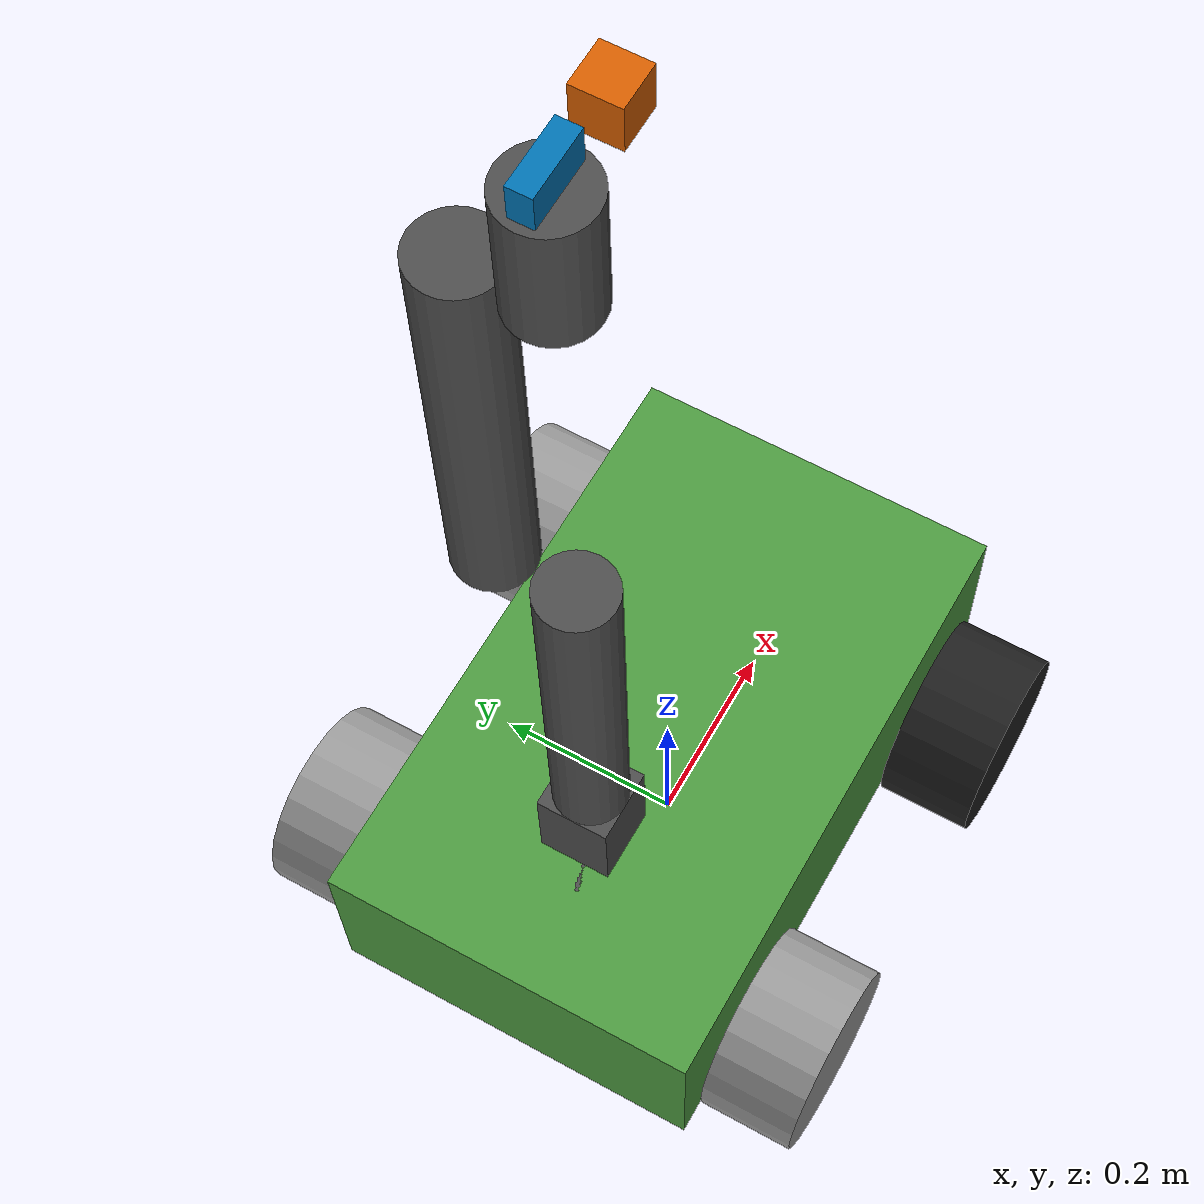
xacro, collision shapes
<?xml version="1.0" ?>
<robot name="mobile_manipulator_robot" xmlns:xacro="http://ros.org/wiki/xacro">
    <xacro:include filename="$(find custom_robot_sim)/urdf/common_macros.xacro" />

    <!-- Arm-parametere -->
    <xacro:property name="L1" value="0.4"/>   <!-- skulder → albue (tidl. 0.385) -->
    <xacro:property name="L2" value="0.4"/>   <!-- albue → håndledd (tidl. 0.270) -->
    <xacro:property name="L3" value="0.115"/>   <!-- håndledd-lenke (tidl. 0.115) -->
    <xacro:property name="R"  value="0.0375"/>  <!-- cylinder-radius = 0.075/2 -->

  <!-- Gazebo ros2_control plugin (+ peker til YAML) -->
  <gazebo>
    <plugin name="gazebo_ros2_control" filename="libgazebo_ros2_control.so">
      <parameters>$(find custom_robot_sim)/config/controller_config.yaml</parameters>
    </plugin>
  </gazebo>

  <!-- ros2_control grensesnitt -->
  <ros2_control name="GazeboSystem" type="system">
    <hardware>
      <plugin>gazebo_ros2_control/GazeboSystem</plugin>
    </hardware>

    <!-- Bakhjul: styring (posisjon) -->
    <joint name="back_left_steer_joint">
      <command_interface name="position"/>
      <state_interface name="position"/>
      <state_interface name="velocity"/>
    </joint>

    <joint name="back_right_steer_joint">
      <command_interface name="position"/>
      <state_interface name="position"/>
      <state_interface name="velocity"/>
    </joint>

    <!-- Forhjul: drift (hastighet) -->
    <joint name="front_left_wheel_joint">
      <command_interface name="velocity"/>
      <state_interface name="position"/>
      <state_interface name="velocity"/>
    </joint>

    <joint name="front_right_wheel_joint">
      <command_interface name="velocity"/>
      <state_interface name="position"/>
      <state_interface name="velocity"/>
    </joint>

    <!-- ARM joints: position-kommando -->
    <joint name="link_1_joint">
        <command_interface name="position"/>
        <state_interface name="position"/>
        <state_interface name="velocity"/>
    </joint>

    <joint name="link_2_joint">
        <command_interface name="position"/>
        <state_interface name="position"/>
        <state_interface name="velocity"/>
    </joint>

    <joint name="link_3_joint">
        <command_interface name="position"/>
        <state_interface name="position"/>
        <state_interface name="velocity"/>
    </joint>

    <joint name="ee_slider_joint">
        <command_interface name="position"/>
        <state_interface name="position"/>
        <state_interface name="velocity"/>
    </joint>
  </ros2_control>

    <xacro:property name="density_pla" value="600" />

    <!-- MOBILE PLATFORM -->

    <link name="base_footprint"/>

    <joint name="base_joint" type="fixed">
        <parent link="base_footprint"/>
        <child link="mobile_base_link" />
        <origin xyz="0 0 0.15" rpy="0 0 0"/>
    </joint>

    <!-- MOBILE BASE -->

    <link name="mobile_base_link">
        <visual>
            <origin xyz="0 0 0" rpy="0 0 0"/>
            <geometry>
                <mesh filename="$(find custom_robot_sim)/meshes/base_mesh.stl" />
            </geometry>
        </visual>
        <collision>
            <origin xyz="0 0 0" rpy="0 0 0"/>
            <geometry>
                <box size="0.650 0.400 0.200"/>
            </geometry>
        </collision>
        <xacro:inertial_box length="0.650" width="0.400" height="0.200" density="${density_pla}">
            <origin xyz="0 0 0" rpy="0 0 0"/>
        </xacro:inertial_box>
    </link>

<gazebo reference="mobile_base_link">
  <material>Gazebo/Grass</material>
</gazebo>

<!-- FRONT LEFT WHEEL (drift) -->
<joint type="continuous" name="front_left_wheel_joint">
  <origin xyz="0.200 0.255 -0.050" rpy="0 0 0"/>
  <parent link="mobile_base_link"/>
  <child link="front_left_wheel_link"/>
  <axis xyz="0 1 0"/>
  <limit effort="1000" velocity="1000"/>
  <dynamics damping="0.7" friction="1.0"/>
</joint>

<link name="front_left_wheel_link">
  <visual>
    <!-- Roter visual som collision (90° rundt X) -->
    <origin xyz="0 0 0" rpy="1.57079632679 0 0"/>
    <geometry><mesh filename="$(find custom_robot_sim)/meshes/wheel_mesh.stl"/></geometry>
  </visual>
  <collision>
    <origin xyz="0 0 0" rpy="1.57079632679 0 0"/>
    <geometry><cylinder length="0.1" radius="0.1"/></geometry>
  </collision>
  <xacro:inertial_cylinder radius="0.1" length="0.1" density="${density_pla}">
    <origin xyz="0 0 0" rpy="0 0 0"/>
  </xacro:inertial_cylinder>
</link>

<gazebo reference="front_left_wheel_link">
  <material>Gazebo/Grey</material>
</gazebo>

<!-- FRONT RIGHT WHEEL (drift) -->
<joint type="continuous" name="front_right_wheel_joint">
  <origin xyz="0.200 -0.255 -0.050" rpy="0 0 0"/>
  <parent link="mobile_base_link"/>
  <child link="front_right_wheel_link"/>
  <axis xyz="0 1 0"/>
  <limit effort="1000" velocity="1000"/>
  <dynamics damping="0.7" friction="1.0"/>
</joint>

<link name="front_right_wheel_link">
  <visual>
    <origin xyz="0 0 0" rpy="1.57079632679 0 0"/>
    <geometry><mesh filename="$(find custom_robot_sim)/meshes/wheel_mesh.stl"/></geometry>
    <material name="rubber_black"/>
  </visual>
  <collision>
    <origin xyz="0 0 0" rpy="1.57079632679 0 0"/>
    <geometry><cylinder length="0.1" radius="0.1"/></geometry>
  </collision>
  <xacro:inertial_cylinder radius="0.1" length="0.1" density="${density_pla}">
    <origin xyz="0 0 0" rpy="0 0 0"/>
  </xacro:inertial_cylinder>
</link>

<gazebo reference="front_right_wheel_link">
  <material>Gazebo/Grey</material>
</gazebo>

<!-- BACK RIGHT: steer + passiv hjulrotasjon -->
<joint type="revolute" name="back_right_steer_joint">
  <origin xyz="-0.200 -0.255 -0.050" rpy="0 0 0"/>
  <parent link="mobile_base_link"/>
  <child link="back_right_steer_link"/>
  <axis xyz="0 0 1"/>
  <limit lower="-0.7854" upper="0.7854" effort="200" velocity="1.5"/>
  <dynamics damping="0.2" friction="0.0"/>
</joint>

<link name="back_right_steer_link">
  <inertial><origin xyz="0 0 0"/><mass value="0.2"/>
    <inertia ixx="0.0004" ixy="0" ixz="0" iyy="0.0004" iyz="0" izz="0.0004"/></inertial>
  <visual><origin xyz="0 0 0"/><geometry><box size="0.03 0.03 0.03"/></geometry></visual>
  <collision><origin xyz="0 0 0"/><geometry><box size="0.03 0.03 0.03"/></geometry></collision>
</link>

<joint type="continuous" name="back_right_wheel_joint">
  <origin xyz="0 0 0" rpy="0 0 0"/>
  <parent link="back_right_steer_link"/>
  <child link="back_right_wheel_link"/>
  <axis xyz="0 1 0"/>
  <limit effort="1000" velocity="1000"/>
  <dynamics damping="0.7" friction="1.0"/>
</joint>

<link name="back_right_wheel_link">
  <visual>
    <origin xyz="0 0 0" rpy="1.57079632679 0 0"/>
    <geometry><mesh filename="$(find custom_robot_sim)/meshes/wheel_mesh.stl"/></geometry>
  </visual>
  <collision>
    <origin xyz="0 0 0" rpy="1.57079632679 0 0"/>
    <geometry><cylinder length="0.1" radius="0.1"/></geometry>
  </collision>
  <xacro:inertial_cylinder radius="0.1" length="0.1" density="${density_pla}">
    <origin xyz="0 0 0" rpy="0 0 0"/>
  </xacro:inertial_cylinder>
</link>

<gazebo reference="back_right_wheel_link">
  <material>Gazebo/Grey</material>
</gazebo>

<!-- BACK LEFT: steer + passiv hjulrotasjon -->
<joint type="revolute" name="back_left_steer_joint">
  <origin xyz="-0.200 0.255 -0.050" rpy="0 0 0"/>
  <parent link="mobile_base_link"/>
  <child link="back_left_steer_link"/>
  <axis xyz="0 0 1"/>
  <limit lower="-0.7854" upper="0.7854" effort="200" velocity="1.5"/>
  <dynamics damping="0.2" friction="0.0"/>
</joint>

<link name="back_left_steer_link">
  <inertial><origin xyz="0 0 0"/><mass value="0.2"/>
    <inertia ixx="0.0004" ixy="0" ixz="0" iyy="0.0004" iyz="0" izz="0.0004"/></inertial>
  <visual><origin xyz="0 0 0"/><geometry><box size="0.03 0.03 0.03"/></geometry></visual>
  <collision><origin xyz="0 0 0"/><geometry><box size="0.03 0.03 0.03"/></geometry></collision>
</link>

<joint type="continuous" name="back_left_wheel_joint">
  <origin xyz="0 0 0" rpy="0 0 0"/>
  <parent link="back_left_steer_link"/>
  <child link="back_left_wheel_link"/>
  <axis xyz="0 1 0"/>
  <limit effort="1000" velocity="1000"/>
  <dynamics damping="0.7" friction="1.0"/>
</joint>

<link name="back_left_wheel_link">
  <visual>
    <origin xyz="0 0 0" rpy="1.57079632679 0 0"/>
    <geometry><mesh filename="$(find custom_robot_sim)/meshes/wheel_mesh.stl"/></geometry>
  </visual>
  <collision>
    <origin xyz="0 0 0" rpy="1.57079632679 0 0"/>
    <geometry><cylinder length="0.1" radius="0.1"/></geometry>
  </collision>
  <xacro:inertial_cylinder radius="0.1" length="0.1" density="${density_pla}">
    <origin xyz="0 0 0" rpy="0 0 0"/>
  </xacro:inertial_cylinder>
</link>

<gazebo reference="back_left_wheel_link">
  <material>Gazebo/Grey</material>
</gazebo>

    <!-- ROBOTIC ARM -->

    <!-- ARM BASE -->
    <joint type="fixed" name="arm_mount_fixed">
        <origin xyz="-0.15 0.0 0.0" rpy="0 0 0"/>
        <parent link="mobile_base_link"/>
        <child link="arm_base_link"/>
    </joint>

    <link name="arm_base_link">
        <visual>
            <origin xyz="0 0 0" rpy="0 0 0"/>
            <geometry>
                <mesh filename="$(find custom_robot_sim)/meshes/arm_base_mesh.stl" />
            </geometry>
        </visual>
        <collision>
            <origin xyz="0 0 0.05" rpy="0 0 0"/>
            <geometry>
                <cylinder length="0.1" radius="${0.135/2}" />
            </geometry>
        </collision>
        <collision>
            <origin xyz="0 0 0.15" rpy="0 0 0"/>
            <geometry>
                <box size="0.075 0.075 0.1"/>
            </geometry>
        </collision>
        <xacro:inertial_cylinder radius="${0.135/2}" length="0.2" density="${density_pla}">
            <origin xyz="0 0 0.1" rpy="0 0 0"/>
        </xacro:inertial_cylinder>
    </link>

    <gazebo reference="arm_base_link">
        <material>Gazebo/DarkGrey</material>
    </gazebo>

    <!-- LINK 1 -->
    <joint type="revolute" name="link_1_joint">
        <origin xyz="0 0 0.2" rpy="-${pi/2} 0 0"/>
        <child link="link_1_link"/>
        <parent link="arm_base_link"/>
        <axis xyz="0 0 1" rpy="0 0 0"/>
        <limit effort="100" velocity="100" lower="-${120*pi/180}" upper="${25*pi/180}"/>
        <dynamics damping="0.7" friction="1.0"/>
    </joint>

    <link name="link_1_link">
    <!-- orientert langs -y, midtpunkt på L1/2 -->
        <visual>
            <origin xyz="0 -${L1/2} 0" rpy="${pi/2} 0 0"/>
            <geometry><cylinder length="${L1}" radius="${R}"/></geometry>
        </visual>
        <collision>
            <origin xyz="0 -${L1/2} 0" rpy="${pi/2} 0 0"/>
            <geometry><cylinder length="${L1}" radius="${R}"/></geometry>
        </collision>
        <xacro:inertial_cylinder radius="${R}" length="${L1}" density="${density_pla}">
            <origin xyz="0 -${L1/2} 0" rpy="${pi/2} 0 0"/>
        </xacro:inertial_cylinder>
    </link>

    <gazebo reference="link_1_link">
        <material>Gazebo/DarkGrey</material>
    </gazebo>

    <!-- LINK 2 -->
    <!-- JOINT 2 (albue, offset litt bakover) -->
    <joint type="revolute" name="link_2_joint">
        <origin xyz="0 -${L1} ${R*2}" rpy="0 0 0"/>
        <child link="link_2_link"/>
        <parent link="link_1_link"/>
        <axis xyz="0 0 1"/>
        <limit effort="100" velocity="100" lower="${0}" upper="${160*pi/180}"/>
        <dynamics damping="0.7" friction="1.0"/>
    </joint>

    <link name="link_2_link">
        <visual>
            <origin xyz="0 0 -0.0375" rpy="0 0 ${pi/2}"/>
            <geometry>
                <cylinder radius="0.035" length="0.15"/>
            </geometry>
        </visual>

        <visual>
            <origin xyz="0 -${L2/2} 0" rpy="${pi/2} 0 0"/>
            <geometry><cylinder length="${L2}" radius="${R}"/></geometry>
        </visual>
        <collision>
            <origin xyz="0 -${L2/2} 0" rpy="${pi/2} 0 0"/>
            <geometry><cylinder length="${L2}" radius="${R}"/></geometry>
        </collision>
        <xacro:inertial_cylinder radius="${R}" length="${L2}" density="${density_pla}">
            <origin xyz="0 -${L2/2} 0" rpy="${pi/2} 0 0"/>
        </xacro:inertial_cylinder>
    </link>

    <gazebo reference="link_2_link">
        <material>Gazebo/DarkGrey</material>
    </gazebo>

    <!-- LINK 3 -->
    <!-- JOINT 3 (håndledd, offset tilbake litt) -->
    <joint name="link_3_joint" type="revolute">
        <parent link="link_2_link"/>
        <child link="link_3_link"/>
        <origin xyz="0 -${L2} -${R*2}" rpy="0 0 0"/> <!-- motsatt offset -->
        <axis xyz="0 0 1"/>
        <limit effort="100" velocity="100" lower="-${pi/2}" upper="${pi/2}"/>
        <dynamics damping="0.7" friction="1.0"/>
    </joint>

    <link name="link_3_link">
        <visual>
            <origin xyz="0 0 0.0375" rpy="0 0 ${pi/2}"/>
            <geometry>
                <cylinder radius="0.035" length="0.15"/>
            </geometry>
        </visual>

        <visual>
            <origin xyz="0 -${L3/2} 0" rpy="${pi/2} 0 0"/>
            <geometry><cylinder length="${L3}" radius="${R}"/></geometry>
        </visual>
        <collision>
            <origin xyz="0 -${L3/2} 0" rpy="${pi/2} 0 0"/>
            <geometry><cylinder length="${L3}" radius="${R}"/></geometry>
        </collision>
        <xacro:inertial_cylinder radius="${R}" length="${L3}" density="${density_pla}">
            <origin xyz="0 -${L3/2} 0" rpy="${pi/2} 0 0"/>
        </xacro:inertial_cylinder>
    </link>

    <gazebo reference="link_3_link">
        <material>Gazebo/DarkGrey</material>
    </gazebo>

    <!-- === ENDEFFEKTOR MED SLIDER === -->
    <!-- Prismatisk joint -->
    <joint type="prismatic" name="ee_slider_joint">
        <origin xyz="0 -${L3} 0" rpy="0 0 0"/> <!-- Plassert i enden av link_3 -->
        <parent link="link_3_link"/>
        <child  link="ee_slider_link"/>
        <axis xyz="0 0 1"/>  <!-- bevegelse i X-retning -->
        <limit lower="-0.10" upper="0.10" effort="200" velocity="0.3"/>
        <dynamics damping="2.5" friction="0.2"/>
    </joint>

    <link name="ee_slider_link">
    <!-- Slider-kloss -->
    <visual>
        <origin xyz="0 0 0" rpy="0 0 0"/>
        <geometry><box size="0.04 0.02 0.2"/></geometry>
    </visual>
    <collision>
        <origin xyz="0 0 0" rpy="0 0 0"/>
        <geometry><box size="0.06 0.06 0.02"/></geometry>
    </collision>
    <inertial>
        <mass value="0.15"/>
        <inertia ixx="0.001" iyy="0.001" izz="0.001" ixy="0" ixz="0" iyz="0"/>
        <origin xyz="0 0 0" rpy="0 0 0"/>
    </inertial>
    </link>

    <!-- Fastmontert verktøy på enden av slideren -->
    <joint type="fixed" name="tool_fixed_joint">
    <origin xyz="0.08 0 0" rpy="0 0 0"/> <!-- 8 cm fram i X-retning -->
    <parent link="ee_slider_link"/>
    <child  link="tool_link"/>
    </joint>

    <link name="tool_link">
    <!-- Bakplate -->
    <visual>
        <origin xyz="-0.14 -0.02 0" rpy="0 0 0"/>
        <geometry><box size="0.2 0.02 0.25"/></geometry>
    </visual>

    <!-- Gaffel -->
    <visual>
        <origin xyz="-0.05 -0.12 0.06" rpy="0 0 0"/>
        <geometry><box size="0.01 0.2 0.02"/></geometry>
    </visual>
    <visual>
        <origin xyz="-0.05 -0.12 -0.06" rpy="0 0 0"/>
        <geometry><box size="0.01 0.2 0.02"/></geometry>
    </visual>

    <collision>
        <origin xyz="0 0 0" rpy="0 0 0"/>
        <geometry><box size="0.04 0.04 0.04"/></geometry>
    </collision>
    <inertial>
        <mass value="0.1"/>
        <inertia ixx="0.0005" iyy="0.0005" izz="0.0005" ixy="0" ixz="0" iyz="0"/>
        <origin xyz="0 0 0" rpy="0 0 0"/>
    </inertial>
    </link>

</robot>
